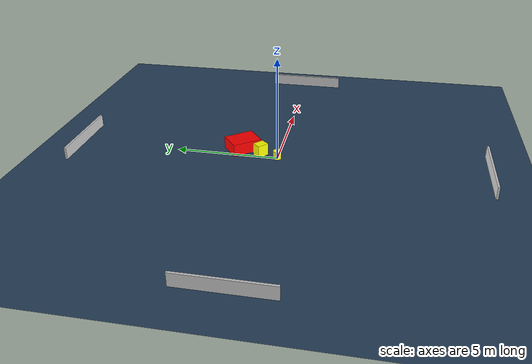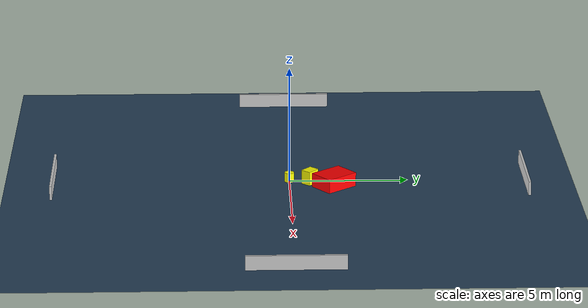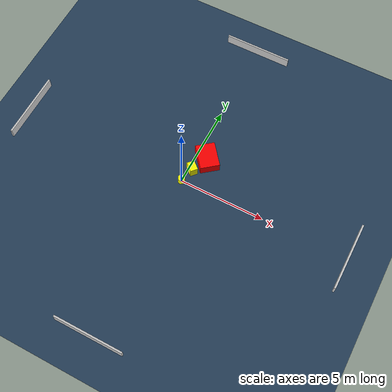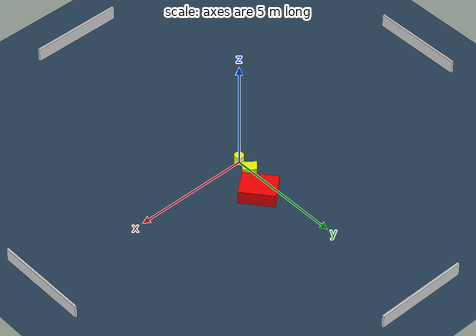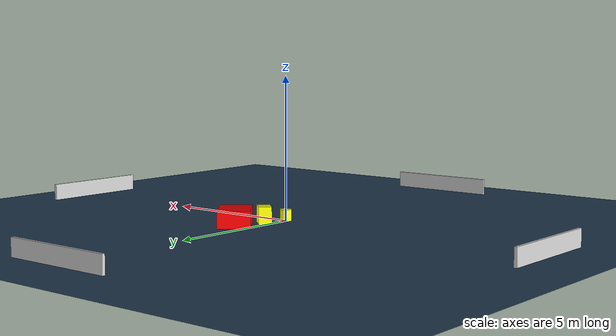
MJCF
<?xml version="1.0" ?>
<mujoco model="generated_environment">
  <option timestep="0.01" integrator="RK4" cone="elliptic"/>
  <default>
    <geom density="1"/>
  </default>
  <asset>
    <texture builtin="gradient" height="3072" name="skybox" rgb1="0.3 0.5 0.7" rgb2="0 0 0" type="skybox" width="512"/>
    <texture builtin="checker" height="300" name="groundplane" rgb1="0.2 0.3 0.4" rgb2="0.1 0.2 0.3" type="2d" width="300"/>
    <material name="groundplane" reflectance="0.2" texrepeat="5 5" texture="groundplane"/>
  </asset>
  <worldbody>
    <light dir="0 0 -1" directional="true" pos="0 0 1.5"/>
    <geom condim="3" friction="0.5 0.005 0.001" material="groundplane" name="floor" pos="0 0 0" size="0 0 0.05" type="plane"/>
    <body name="walls">
      <geom name="wall_1" condim="4" pos="-10.0 0.0 0.3" rgba="0.800000011920929 0.800000011920929 0.800000011920929 1.0" size="0.05 2.0 0.3" type="box"/>
      <geom name="wall_2" condim="4" pos="10.0 0.0 0.3" rgba="0.800000011920929 0.800000011920929 0.800000011920929 1.0" size="0.05 2.0 0.3" type="box"/>
      <geom name="wall_3" condim="4" pos="0.0 -10.0 0.3" rgba="0.800000011920929 0.800000011920929 0.800000011920929 1.0" size="2.0 0.05 0.3" type="box"/>
      <geom name="wall_4" condim="4" pos="0.0 10.0 0.3" rgba="0.800000011920929 0.800000011920929 0.800000011920929 1.0" size="2.0 0.05 0.3" type="box"/>
    </body>
    <body name="robot">
      <joint name="joint_x" type="slide" pos="0 0 0" axis="1 0 0"/>
      <joint name="joint_y" type="slide" pos="0 0 0" axis="0 1 0"/>
      <geom name="robot" type="cylinder" pos="0.0 0.0 0.2" size="0.2 0.2 0.0" mass="5.0" friction="1.0 0.005 0.0001" condim="4" rgba="1.0 1.0 0.0 1.0"/>
    </body>
    <body name="obstacle_1_movable">
      <geom name="obstacle_1_movable" condim="4" pos="0.23137123076241733 0.8607913420975585 0.3" euler="0 0 48.17336396483243" friction="0.0 0.005 0.001" rgba="1.0 1.0 0.0 1.0" size="0.22409156518316264 0.28703357393292006 0.3" type="box" mass="0.1"/>
      <joint type="free"/>
    </body>
    <body name="obstacle_2_static">
      <geom name="obstacle_2_static" condim="4" pos="0.6732288554373299 1.8588674216633423 0.3" euler="0 0 128.73508364492372" friction="0.0 0.005 0.001" rgba="1.0 0.0 0.0 1.0" size="0.7395255586727885 0.5592923794987448 0.3" type="box"/>
    </body>
  </worldbody>
  <actuator>
    <motor name="actuator_x" joint="joint_x" gear="1" ctrlrange="-1 1"/>
    <motor name="actuator_y" joint="joint_y" gear="1" ctrlrange="-1 1"/>
  </actuator>
</mujoco>
